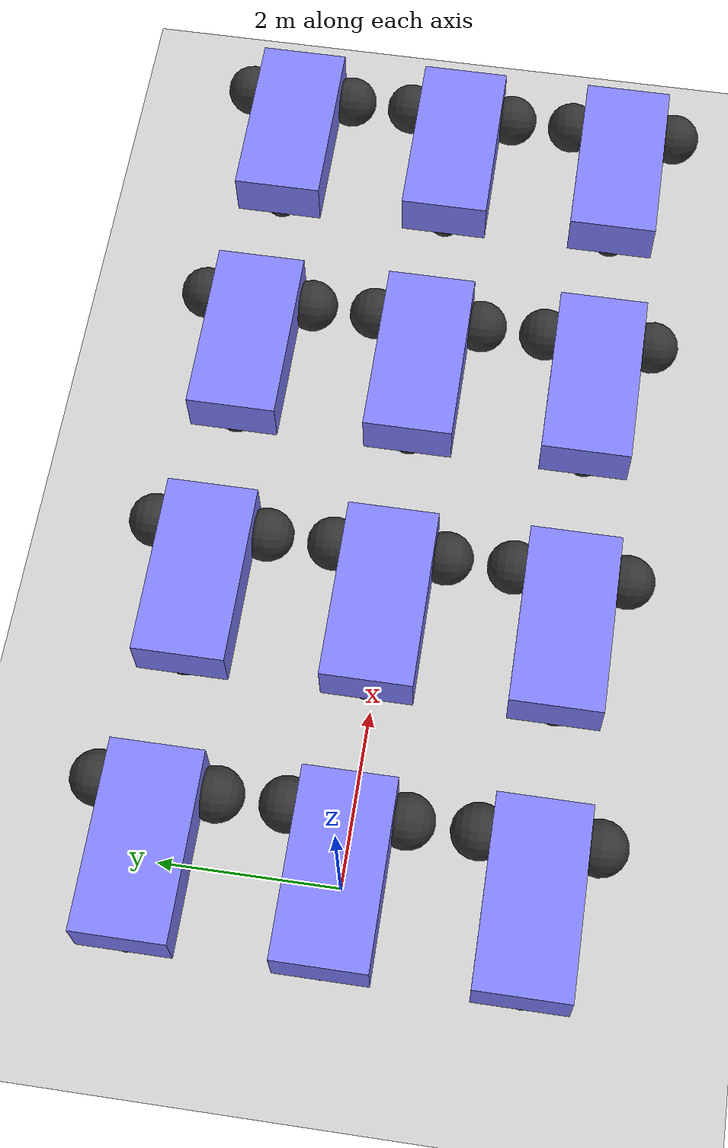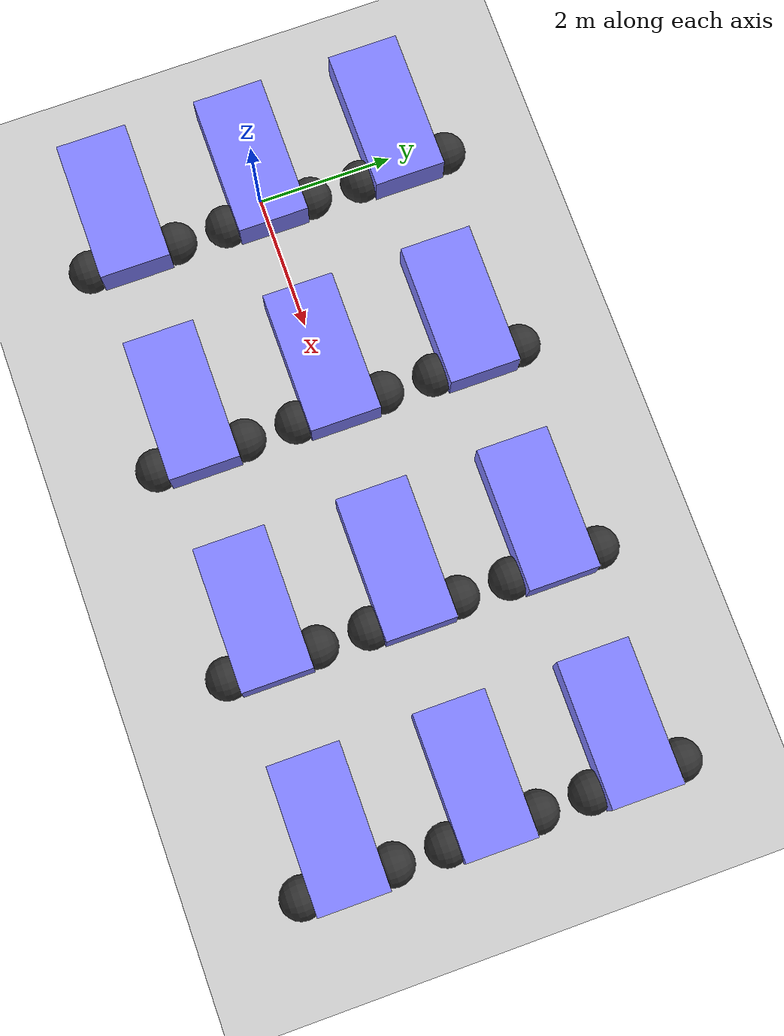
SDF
<?xml version="1.0" ?>

<sdf version="1.12">
  <world name="multi_robot">

    <plugin
      filename="gz-sim-imu-system"
      name="gz::sim::systems::Imu">
    </plugin>
    <plugin
      filename="gz-sim-sensors-system"
      name="gz::sim::systems::Sensors">
      <render_engine>ogre2</render_engine>
    </plugin>
    <plugin
      filename="gz-sim-scene-broadcaster-system"
      name="gz::sim::systems::SceneBroadcaster">
    </plugin>

    <light name="sun" type="directional">
      <cast_shadows>true</cast_shadows>
      <pose>0 0 10 0 0 0</pose>
      <diffuse>0.8 0.8 0.8 1</diffuse>
      <specular>0.2 0.2 0.2 1</specular>
      <attenuation>
        <range>1000</range>
        <constant>0.9</constant>
        <linear>0.01</linear>
        <quadratic>0.001</quadratic>
      </attenuation>
      <direction>-0.5 0.1 -0.9</direction>
    </light>

    <model name="ground_plane">
      <static>true</static>
      <link name="link">
        <collision name="collision">
          <geometry>
            <plane>
              <normal>0 0 1</normal>
              <size>100 100</size>
            </plane>
          </geometry>
        </collision>
        <visual name="visual">
          <geometry>
            <plane>
              <normal>0 0 1</normal>
              <size>100 100</size>
            </plane>
          </geometry>
          <material>
            <ambient>0.8 0.8 0.8 1</ambient>
            <diffuse>0.8 0.8 0.8 1</diffuse>
            <specular>0.8 0.8 0.8 1</specular>
          </material>
        </visual>
      </link>
    </model>

    <include>
      <uri>package://overhead_test/models/vehicle_group</uri>
      <name>vehicle_group_1</name>
      <namespace>{name}</namespace>
      <pose>0 0 0 0 0 0</pose>
    </include>

    <include>
      <uri>package://overhead_test/models/vehicle_group</uri>
      <name>vehicle_group_2</name>
      <namespace>{name}</namespace>
      <pose>3 0 0 0 0 0</pose>
    </include>

    <include>
      <uri>package://overhead_test/models/vehicle_group</uri>
      <name>vehicle_group_3</name>
      <namespace>{name}</namespace>
      <pose>6 0 0 0 0 0</pose>
    </include>

    <include>
      <uri>package://overhead_test/models/vehicle_group</uri>
      <name>vehicle_group_4</name>
      <namespace>{name}</namespace>
      <pose>9 0 0 0 0 0</pose>
    </include>

  </world>
</sdf>

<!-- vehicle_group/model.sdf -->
<sdf version="1.12">
  <model name="vehicle_group">
    <link name="dummy_link"/>

    <include>
      <name>vehicle_1</name>
      <namespace>banana</namespace>
      <pose>0 -2 1 0 0 0</pose>
      <uri>model://overhead_test/models/vehicle</uri>
    </include>

    <include>
      <name>vehicle_2</name>
      <namespace>orange</namespace>
      <pose>0 0 1 0 0 0</pose>
      <uri>model://overhead_test/models/vehicle</uri>
    </include>

    <include>
      <name>vehicle_3</name>
      <namespace>grape</namespace>
      <pose>0 2 1 0 0 0</pose>
      <uri>model://overhead_test/models/vehicle</uri>
    </include>

  </model>
</sdf>

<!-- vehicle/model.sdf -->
<sdf version="1.12">
    <model name='vehicle'>
      <link name='chassis'>
        <pose>-0.151427 -0 0.175 0 -0 0</pose>
        <inertial>
          <mass>1.14395</mass>
          <inertia>
            <ixx>0.126164</ixx>
            <ixy>0</ixy>
            <ixz>0</ixz>
            <iyy>0.416519</iyy>
            <iyz>0</iyz>
            <izz>0.481014</izz>
          </inertia>
        </inertial>
        <visual name='visual_chassis'>
          <geometry>
            <box>
              <size>2.01142 1 0.568726</size>
            </box>
          </geometry>
          <material>
            <ambient>0.5 0.5 1.0 1</ambient>
            <diffuse>0.5 0.5 1.0 1</diffuse>
            <specular>0.0 0.0 1.0 1</specular>
          </material>
        </visual>
        <collision name='collision_chassis'>
          <geometry>
            <box>
              <size>2.01142 1 0.568726</size>
            </box>
          </geometry>
        </collision>
        <sensor name="imu_sensor" type="imu">
          <always_on>1</always_on>
          <update_rate>30</update_rate>
          <visualize>true</visualize>
        </sensor>
        <sensor name="rgbd_camera" type="rgbd_camera">
          <update_rate>20</update_rate>
          <camera>
            <horizontal_fov>1.047</horizontal_fov>
            <image>
              <width>640</width>
              <height>480</height>
            </image>
            <clip>
              <near>0.1</near>
              <far>10.0</far>
            </clip>
          </camera>
        </sensor>
      </link>

      <link name='left_wheel'>
        <pose>0.554283 0.625029 -0.025 -1.5707 0 0</pose>
        <inertial>
          <mass>2</mass>
          <inertia>
            <ixx>0.145833</ixx>
            <ixy>0</ixy>
            <ixz>0</ixz>
            <iyy>0.145833</iyy>
            <iyz>0</iyz>
            <izz>0.125</izz>
          </inertia>
        </inertial>
        <visual name='visual_left_wheel'>
          <geometry>
            <sphere>
              <radius>0.3</radius>
            </sphere>
          </geometry>
          <material>
            <ambient>0.2 0.2 0.2 1</ambient>
            <diffuse>0.2 0.2 0.2 1</diffuse>
            <specular>0.2 0.2 0.2 1</specular>
          </material>
        </visual>
        <collision name='collision_left_wheel'>
          <geometry>
            <sphere>
              <radius>0.3</radius>
            </sphere>
          </geometry>
        </collision>
      </link>

      <link name='right_wheel'>
        <pose>0.554282 -0.625029 -0.025 -1.5707 0 0</pose>
        <inertial>
          <mass>2</mass>
          <inertia>
            <ixx>0.145833</ixx>
            <ixy>0</ixy>
            <ixz>0</ixz>
            <iyy>0.145833</iyy>
            <iyz>0</iyz>
            <izz>0.125</izz>
          </inertia>
        </inertial>
        <visual name='visual_right_wheel'>
          <geometry>
            <sphere>
              <radius>0.3</radius>
            </sphere>
          </geometry>
          <material>
            <ambient>0.2 0.2 0.2 1</ambient>
            <diffuse>0.2 0.2 0.2 1</diffuse>
            <specular>0.2 0.2 0.2 1</specular>
          </material>
        </visual>
        <collision name='collision_right_wheel'>
          <geometry>
            <sphere>
              <radius>0.3</radius>
            </sphere>
          </geometry>
        </collision>
      </link>

      <link name='caster'>
        <pose>-0.957138 -0 -0.125 0 -0 0</pose>
        <inertial>
          <mass>1</mass>
          <inertia>
            <ixx>0.1</ixx>
            <ixy>0</ixy>
            <ixz>0</ixz>
            <iyy>0.1</iyy>
            <iyz>0</iyz>
            <izz>0.1</izz>
          </inertia>
        </inertial>
        <visual name='visual_caster'>
          <geometry>
            <sphere>
              <radius>0.2</radius>
            </sphere>
          </geometry>
          <material>
            <ambient>0.2 0.2 0.2 1</ambient>
            <diffuse>0.2 0.2 0.2 1</diffuse>
            <specular>0.2 0.2 0.2 1</specular>
          </material>
        </visual>
        <collision name='collision_caster'>
          <geometry>
            <sphere>
              <radius>0.2</radius>
            </sphere>
          </geometry>
        </collision>
      </link>

      <joint name='left_wheel_joint' type='revolute'>
        <parent>chassis</parent>
        <child>left_wheel</child>
        <axis>
          <xyz>0 0 1</xyz>
          <limit>
            <lower>-1.79769e+308</lower>
            <upper>1.79769e+308</upper>
          </limit>
        </axis>
      </joint>

      <joint name='right_wheel_joint' type='revolute'>
        <parent>chassis</parent>
        <child>right_wheel</child>
        <axis>
          <xyz>0 0 1</xyz>
          <limit>
            <lower>-1.79769e+308</lower>
            <upper>1.79769e+308</upper>
          </limit>
        </axis>
      </joint>

      <joint name='caster_wheel' type='ball'>
        <parent>chassis</parent>
        <child>caster</child>
      </joint>

      <plugin
        filename="gz-sim-diff-drive-system"
        name="gz::sim::systems::DiffDrive">
        <left_joint>left_wheel_joint</left_joint>
        <right_joint>right_wheel_joint</right_joint>
        <wheel_separation>1.25</wheel_separation>
        <wheel_radius>0.3</wheel_radius>
        <odom_publish_frequency>1</odom_publish_frequency>
        <max_linear_acceleration>1</max_linear_acceleration>
        <min_linear_acceleration>-1</min_linear_acceleration>
        <max_angular_acceleration>2</max_angular_acceleration>
        <min_angular_acceleration>-2</min_angular_acceleration>
        <max_linear_velocity>0.5</max_linear_velocity>
        <min_linear_velocity>-0.5</min_linear_velocity>
        <max_angular_velocity>1</max_angular_velocity>
        <min_angular_velocity>-1</min_angular_velocity>
      </plugin>

    </model>
</sdf>
